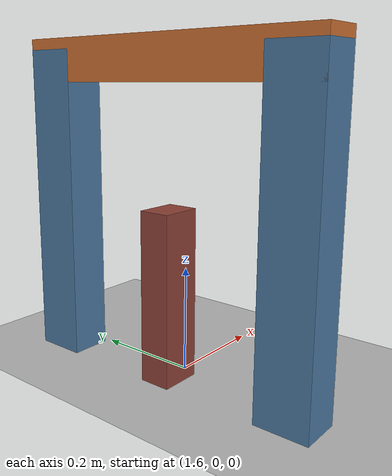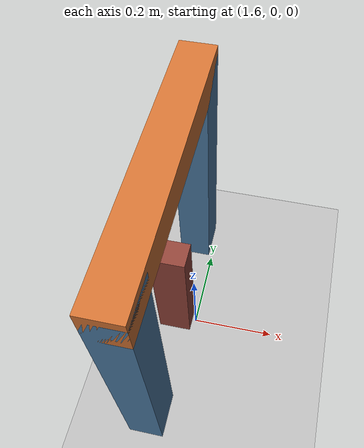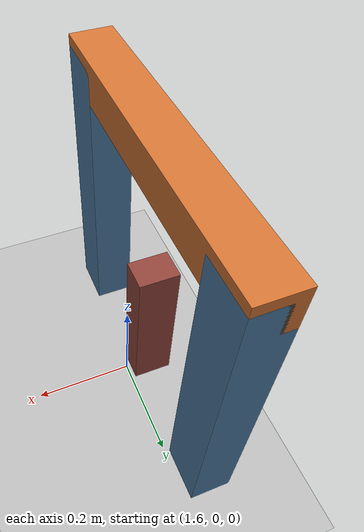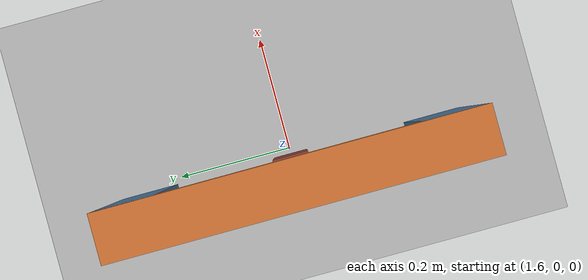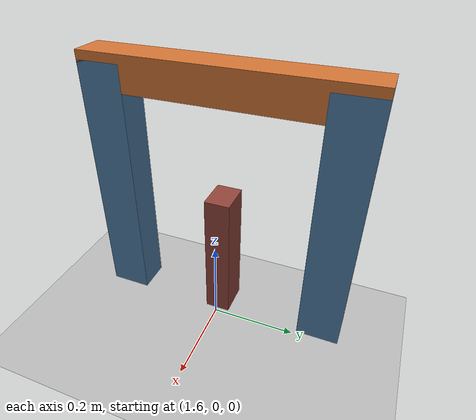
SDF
<?xml version="1.0"?>
<sdf version="1.9">
  <world name="dog2_window_frame">
    <gravity>0 0 -9.81</gravity>
    <physics name="1ms" type="ignored">
      <max_step_size>0.001</max_step_size>
      <real_time_factor>1.0</real_time_factor>
      <real_time_update_rate>1000</real_time_update_rate>
    </physics>

    <plugin filename="gz-sim-physics-system" name="gz::sim::systems::Physics"/>
    <plugin filename="gz-sim-user-commands-system" name="gz::sim::systems::UserCommands"/>
    <plugin filename="gz-sim-scene-broadcaster-system" name="gz::sim::systems::SceneBroadcaster"/>
    <!-- Required by the foot contact sensors in obstacle trials. This
         publishes contact observations only; it does not change dynamics. -->
    <plugin
      filename="gz-sim-contact-system"
      name="gz::sim::systems::Contact"/>

    <light type="directional" name="sun">
      <cast_shadows>true</cast_shadows>
      <pose>0 0 10 0 0 0</pose>
      <diffuse>0.8 0.8 0.8 1</diffuse>
      <specular>0.2 0.2 0.2 1</specular>
      <attenuation>
        <range>1000</range>
        <constant>0.9</constant>
        <linear>0.01</linear>
        <quadratic>0.001</quadratic>
      </attenuation>
      <direction>-0.5 0.1 -0.9</direction>
    </light>

    <model name="ground_plane">
      <static>true</static>
      <link name="link">
        <collision name="collision">
          <geometry>
            <plane>
              <normal>0 0 1</normal>
              <size>200 200</size>
            </plane>
          </geometry>
          <surface>
            <friction>
              <ode>
                <mu>1.0</mu>
                <mu2>1.0</mu2>
              </ode>
            </friction>
          </surface>
        </collision>
        <visual name="visual">
          <geometry>
            <plane>
              <normal>0 0 1</normal>
              <size>200 200</size>
            </plane>
          </geometry>
          <material>
            <ambient>0.72 0.72 0.72 1</ambient>
            <diffuse>0.72 0.72 0.72 1</diffuse>
            <specular>0.10 0.10 0.10 1</specular>
          </material>
        </visual>
      </link>
    </model>

    <model name="window_frame">
      <static>true</static>
      <pose>1.55 0 0 0 0 0</pose>
      <link name="frame">
        <collision name="left_column_collision">
          <pose>0 -0.26 0.30 0 0 0</pose>
          <geometry>
            <box>
              <size>0.08 0.10 0.60</size>
            </box>
          </geometry>
        </collision>
        <visual name="left_column_visual">
          <pose>0 -0.26 0.30 0 0 0</pose>
          <geometry>
            <box>
              <size>0.08 0.10 0.60</size>
            </box>
          </geometry>
          <material>
            <ambient>0.30 0.48 0.64 1</ambient>
            <diffuse>0.30 0.48 0.64 1</diffuse>
            <specular>0.08 0.12 0.16 1</specular>
          </material>
        </visual>

        <collision name="right_column_collision">
          <pose>0 0.26 0.30 0 0 0</pose>
          <geometry>
            <box>
              <size>0.08 0.10 0.60</size>
            </box>
          </geometry>
        </collision>
        <visual name="right_column_visual">
          <pose>0 0.26 0.30 0 0 0</pose>
          <geometry>
            <box>
              <size>0.08 0.10 0.60</size>
            </box>
          </geometry>
          <material>
            <ambient>0.30 0.48 0.64 1</ambient>
            <diffuse>0.30 0.48 0.64 1</diffuse>
            <specular>0.08 0.12 0.16 1</specular>
          </material>
        </visual>

        <collision name="top_beam_collision">
          <pose>0 0 0.58 0 0 0</pose>
          <geometry>
            <box>
              <size>0.08 0.62 0.08</size>
            </box>
          </geometry>
        </collision>
        <visual name="top_beam_visual">
          <pose>0 0 0.58 0 0 0</pose>
          <geometry>
            <box>
              <size>0.08 0.62 0.08</size>
            </box>
          </geometry>
          <material>
            <ambient>0.82 0.45 0.20 1</ambient>
            <diffuse>0.82 0.45 0.20 1</diffuse>
            <specular>0.16 0.09 0.04 1</specular>
          </material>
        </visual>

        <collision name="guide_post_collision">
          <pose>0 0 0.16 0 0 0</pose>
          <geometry>
            <box>
              <size>0.08 0.06 0.32</size>
            </box>
          </geometry>
        </collision>
        <visual name="guide_post_visual">
          <pose>0 0 0.16 0 0 0</pose>
          <geometry>
            <box>
              <size>0.08 0.06 0.32</size>
            </box>
          </geometry>
          <material>
            <ambient>0.56 0.26 0.22 1</ambient>
            <diffuse>0.56 0.26 0.22 1</diffuse>
            <specular>0.10 0.05 0.05 1</specular>
          </material>
        </visual>
      </link>
    </model>
  </world>
</sdf>
